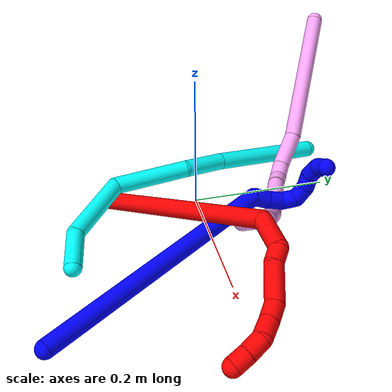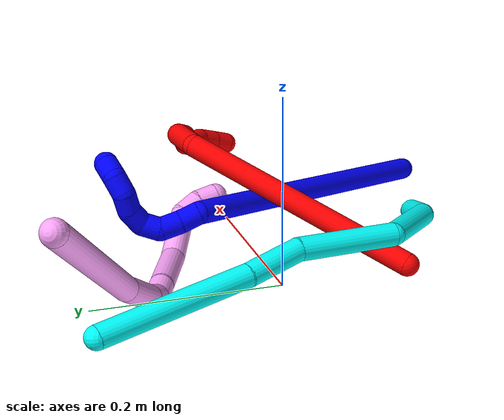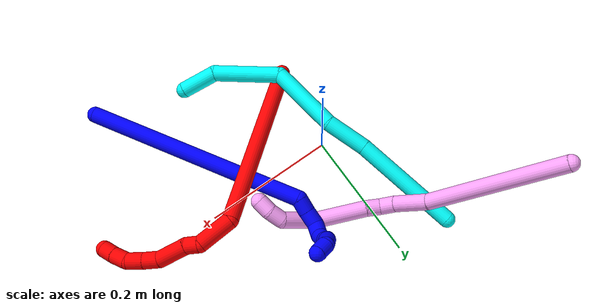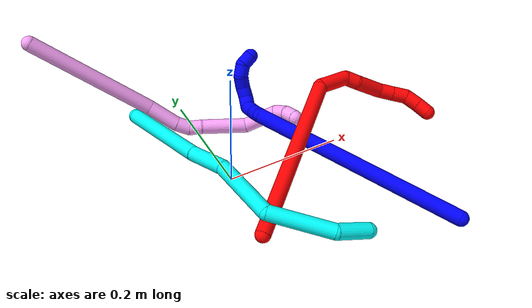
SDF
<sdf version="1.7">
 <world name="default">
  <plugin name="TubeGeneratorPlugin" filename="libtube_generator_plugin.so"/>
  <model name="photoneo_s_sensor">
   <static>1</static>
   <pose>0 0 2 1.57079 1.57079 3.14159</pose>
   <link name="link">
    <inertial><mass>0.1</mass></inertial>
    <sensor name="sensor" type="depth">
     <update_rate>30</update_rate>
     <camera>
      <horizontal_fov>1.22</horizontal_fov>
      <image><width>1920</width><height>1200</height><format>B8G8R8</format></image>
      <clip><near>0.1</near><far>4</far></clip>
      <depth_camera><output>points</output></depth_camera>
     </camera>
     <plugin name="camera_plugin" filename="libgazebo_ros_depth_camera.so">
      <baseline>0.2</baseline>
      <alwaysOn>1</alwaysOn>
      <updateRate>0.0</updateRate>
      <cameraName>camera_ir</cameraName>
      <imageTopicName>/camera/color/image_raw</imageTopicName>
      <cameraInfoTopicName>/camera/color/camera_info</cameraInfoTopicName>
      <depthImageTopicName>/camera/depth/image_raw</depthImageTopicName>
      <depthImageCameraInfoTopicName>/camera/depth/camera_info</depthImageCameraInfoTopicName>
      <pointCloudTopicName>/camera/depth/points</pointCloudTopicName>
      <frameName>fr_optical</frameName>
      <pointCloudCutoff>0.1</pointCloudCutoff>
      <pointCloudCutoffMax>2.0</pointCloudCutoffMax>
      <distortionK1>0</distortionK1>
      <distortionK2>0</distortionK2>
      <distortionK3>0</distortionK3>
      <distortionT1>0</distortionT1>
      <distortionT2>0</distortionT2>
      <CxPrime>0</CxPrime>
      <Cx>0</Cx>
      <Cy>0</Cy>
      <focalLength>0</focalLength>
      <hackBaseline>0</hackBaseline>
     </plugin>
    </sensor>
   </link>
  </model>
  <gravity>0 0 -9.8</gravity>
  <magnetic_field>6e-06 2.3e-05 -4.2e-05</magnetic_field>
  <atmosphere type="adiabatic"/>
  <physics name="default_physics" default="0" type="ode">
   <max_step_size>0.003</max_step_size>
   <real_time_factor>1</real_time_factor>
   <real_time_update_rate>1000</real_time_update_rate>
   <max_contacts>10000</max_contacts>
   <ode>
    <solver>
     <type>quick</type>
     <iters>100</iters>
     <sor>1.3</sor>
     <use_dynamic_moi_rescaling>0</use_dynamic_moi_rescaling>
    </solver>
    <constraints>
     <contact_max_correcting_vel>0</contact_max_correcting_vel>
     <contact_surface_layer>0.001</contact_surface_layer>
     <cfm>0</cfm>
     <erp>0.2</erp>
    </constraints>
   </ode>
  </physics>
  <scene><ambient>0.4 0.4 0.4 1</ambient><background>0.7 0.7 0.7 1</background><shadows>0</shadows></scene>
  <audio><device>default</device></audio>
  <spherical_coordinates>
   <surface_model>EARTH_WGS84</surface_model>
   <latitude_deg>0</latitude_deg>
   <longitude_deg>0</longitude_deg>
   <elevation>0</elevation>
   <heading_deg>0</heading_deg>
  </spherical_coordinates>
  <model name="bin">
   <static>1</static>
   <link name="bottom">
    <collision name="collision-bottom">
     <pose>0 0 -0.01 0 -0 0</pose>
     <geometry><box><size>0.8 0.6 0.02</size></box></geometry>
     <surface>
      <friction><ode><mu>100</mu><mu2>100</mu2></ode></friction>
      <contact><collide_bitmask>65535</collide_bitmask></contact>
     </surface>
    </collision>
   </link>
   <link name="west_wall">
    <collision name="collision-west_wall">
     <pose>-0.41 0 0.1 0 -0 0</pose>
     <geometry><box><size>0.02 0.6 0.2</size></box></geometry>
     <surface>
      <friction><ode><mu>100</mu><mu2>100</mu2></ode></friction>
      <contact><collide_bitmask>65535</collide_bitmask></contact>
     </surface>
    </collision>
   </link>
   <link name="east_wall">
    <collision name="collision-east_wall">
     <pose>0.41 0 0.1 0 -0 0</pose>
     <geometry><box><size>0.02 0.6 0.2</size></box></geometry>
     <surface>
      <friction><ode><mu>100</mu><mu2>100</mu2></ode></friction>
      <contact><collide_bitmask>65535</collide_bitmask></contact>
     </surface>
    </collision>
   </link>
   <link name="south_wall">
    <collision name="collision-south_wall">
     <pose>0 -0.31 0.1 0 -0 0</pose>
     <geometry><box><size>0.8 0.02 0.2</size></box></geometry>
     <surface>
      <friction><ode><mu>100</mu><mu2>100</mu2></ode></friction>
      <contact><collide_bitmask>65535</collide_bitmask></contact>
     </surface>
    </collision>
   </link>
   <link name="north_wall">
    <collision name="collision-north_wall">
     <pose>0 0.31 0.1 0 -0 0</pose>
     <geometry><box><size>0.8 0.02 0.2</size></box></geometry>
     <surface>
      <friction><ode><mu>100</mu><mu2>100</mu2></ode></friction>
      <contact><collide_bitmask>65535</collide_bitmask></contact>
     </surface>
    </collision>
   </link>
  </model>
  <model name="1">
   <static>0</static>
   <link name="1">
    <collision name="collision-cylinder-e_1_1_4">
     <pose>-0.10485 0.124613 -0.070045 -2.08288 -0.63284 1.02044</pose>
     <geometry><cylinder><radius>0.0125</radius><length>0.354561</length></cylinder></geometry>
     <surface>
      <friction><ode><mu>1.16</mu><mu2>1.16</mu2><slip1>0</slip1><slip2>0</slip2></ode></friction>
      <contact><ode><kp>1e+06</kp><kd>1</kd><max_vel>0</max_vel><min_depth>0.001</min_depth></ode></contact>
     </surface>
    </collision>
    <visual name="visual-cylinder-e_1_1_4">
     <pose>-0.10485 0.124613 -0.070045 -2.08288 -0.63284 1.02044</pose>
     <geometry><cylinder><radius>0.0125</radius><length>0.354561</length></cylinder></geometry>
     <material><ambient>0 0 1 1</ambient></material>
    </visual>
    <collision name="collision-cylinder-e_2_4_5">
     <pose>-0.216772 0.249952 -0.148325 -3.05378 -0.707674 2.90482</pose>
     <geometry><cylinder><radius>0.0125</radius><length>0.021756</length></cylinder></geometry>
     <surface>
      <friction><ode><mu>1.16</mu><mu2>1.16</mu2><slip1>0</slip1><slip2>0</slip2></ode></friction>
      <contact><ode><kp>1e+06</kp><kd>1</kd><max_vel>0</max_vel><min_depth>0.001</min_depth></ode></contact>
     </surface>
    </collision>
    <visual name="visual-cylinder-e_2_4_5">
     <pose>-0.216772 0.249952 -0.148325 -3.05378 -0.707674 2.90482</pose>
     <geometry><cylinder><radius>0.0125</radius><length>0.021756</length></cylinder></geometry>
     <material><ambient>0 0 1 1</ambient></material>
    </visual>
    <collision name="collision-cylinder-e_3_5_6">
     <pose>-0.230768 0.253063 -0.165285 -2.87468 -0.653301 2.38699</pose>
     <geometry><cylinder><radius>0.0125</radius><length>0.022785</length></cylinder></geometry>
     <surface>
      <friction><ode><mu>1.16</mu><mu2>1.16</mu2><slip1>0</slip1><slip2>0</slip2></ode></friction>
      <contact><ode><kp>1e+06</kp><kd>1</kd><max_vel>0</max_vel><min_depth>0.001</min_depth></ode></contact>
     </surface>
    </collision>
    <visual name="visual-cylinder-e_3_5_6">
     <pose>-0.230768 0.253063 -0.165285 -2.87468 -0.653301 2.38699</pose>
     <geometry><cylinder><radius>0.0125</radius><length>0.022785</length></cylinder></geometry>
     <material><ambient>0 0 1 1</ambient></material>
    </visual>
    <collision name="collision-cylinder-e_4_6_7">
     <pose>-0.23798 0.259626 -0.183211 -2.7153 -0.028506 0.131526</pose>
     <geometry><cylinder><radius>0.0125</radius><length>0.020216</length></cylinder></geometry>
     <surface>
      <friction><ode><mu>1.16</mu><mu2>1.16</mu2><slip1>0</slip1><slip2>0</slip2></ode></friction>
      <contact><ode><kp>1e+06</kp><kd>1</kd><max_vel>0</max_vel><min_depth>0.001</min_depth></ode></contact>
     </surface>
    </collision>
    <visual name="visual-cylinder-e_4_6_7">
     <pose>-0.23798 0.259626 -0.183211 -2.7153 -0.028506 0.131526</pose>
     <geometry><cylinder><radius>0.0125</radius><length>0.020216</length></cylinder></geometry>
     <material><ambient>0 0 1 1</ambient></material>
    </visual>
    <collision name="collision-cylinder-e_5_7_8">
     <pose>-0.235615 0.272241 -0.197594 -2.12172 0.26179 -0.462361</pose>
     <geometry><cylinder><radius>0.0125</radius><length>0.020502</length></cylinder></geometry>
     <surface>
      <friction><ode><mu>1.16</mu><mu2>1.16</mu2><slip1>0</slip1><slip2>0</slip2></ode></friction>
      <contact><ode><kp>1e+06</kp><kd>1</kd><max_vel>0</max_vel><min_depth>0.001</min_depth></ode></contact>
     </surface>
    </collision>
    <visual name="visual-cylinder-e_5_7_8">
     <pose>-0.235615 0.272241 -0.197594 -2.12172 0.26179 -0.462361</pose>
     <geometry><cylinder><radius>0.0125</radius><length>0.020502</length></cylinder></geometry>
     <material><ambient>0 0 1 1</ambient></material>
    </visual>
    <collision name="collision-cylinder-e_6_8_9">
     <pose>-0.227777 0.289041 -0.204854 -1.81417 0.541736 -0.682378</pose>
     <geometry><cylinder><radius>0.0125</radius><length>0.020114</length></cylinder></geometry>
     <surface>
      <friction><ode><mu>1.16</mu><mu2>1.16</mu2><slip1>0</slip1><slip2>0</slip2></ode></friction>
      <contact><ode><kp>1e+06</kp><kd>1</kd><max_vel>0</max_vel><min_depth>0.001</min_depth></ode></contact>
     </surface>
    </collision>
    <visual name="visual-cylinder-e_6_8_9">
     <pose>-0.227777 0.289041 -0.204854 -1.81417 0.541736 -0.682378</pose>
     <geometry><cylinder><radius>0.0125</radius><length>0.020114</length></cylinder></geometry>
     <material><ambient>0 0 1 1</ambient></material>
    </visual>
    <collision name="collision-cylinder-e_7_9_10">
     <pose>-0.216293 0.302772 -0.212591 -2.38263 0.679171 -1.44984</pose>
     <geometry><cylinder><radius>0.0125</radius><length>0.020053</length></cylinder></geometry>
     <surface>
      <friction><ode><mu>1.16</mu><mu2>1.16</mu2><slip1>0</slip1><slip2>0</slip2></ode></friction>
      <contact><ode><kp>1e+06</kp><kd>1</kd><max_vel>0</max_vel><min_depth>0.001</min_depth></ode></contact>
     </surface>
    </collision>
    <visual name="visual-cylinder-e_7_9_10">
     <pose>-0.216293 0.302772 -0.212591 -2.38263 0.679171 -1.44984</pose>
     <geometry><cylinder><radius>0.0125</radius><length>0.020053</length></cylinder></geometry>
     <material><ambient>0 0 1 1</ambient></material>
    </visual>
    <collision name="collision-cylinder-e_8_10_2">
     <pose>-0.202941 0.307624 -0.22533 3.06861 0.782288 2.965</pose>
     <geometry><cylinder><radius>0.0125</radius><length>0.020013</length></cylinder></geometry>
     <surface>
      <friction><ode><mu>1.16</mu><mu2>1.16</mu2><slip1>0</slip1><slip2>0</slip2></ode></friction>
      <contact><ode><kp>1e+06</kp><kd>1</kd><max_vel>0</max_vel><min_depth>0.001</min_depth></ode></contact>
     </surface>
    </collision>
    <visual name="visual-cylinder-e_8_10_2">
     <pose>-0.202941 0.307624 -0.22533 3.06861 0.782288 2.965</pose>
     <geometry><cylinder><radius>0.0125</radius><length>0.020013</length></cylinder></geometry>
     <material><ambient>0 0 1 1</ambient></material>
    </visual>
    <collision name="collision-sphere-2">
     <pose>-0.195887 0.307106 -0.232409 0 -0 0</pose>
     <geometry><sphere><radius>0.0125</radius></sphere></geometry>
     <surface>
      <friction><ode><mu>1.16</mu><mu2>1.16</mu2><slip1>0</slip1><slip2>0</slip2></ode></friction>
      <contact><ode><kp>1e+06</kp><kd>1</kd><max_vel>0</max_vel><min_depth>0.001</min_depth></ode></contact>
     </surface>
    </collision>
    <visual name="visual-sphere-2">
     <pose>-0.195887 0.307106 -0.232409 0 -0 0</pose>
     <geometry><sphere><radius>0.0125</radius></sphere></geometry>
     <material><ambient>0 0 1 1</ambient></material>
    </visual>
    <collision name="collision-sphere-10">
     <pose>-0.209995 0.308141 -0.218251 0 -0 0</pose>
     <geometry><sphere><radius>0.0125</radius></sphere></geometry>
     <surface>
      <friction><ode><mu>1.16</mu><mu2>1.16</mu2><slip1>0</slip1><slip2>0</slip2></ode></friction>
      <contact><ode><kp>1e+06</kp><kd>1</kd><max_vel>0</max_vel><min_depth>0.001</min_depth></ode></contact>
     </surface>
    </collision>
    <visual name="visual-sphere-10">
     <pose>-0.209995 0.308141 -0.218251 0 -0 0</pose>
     <geometry><sphere><radius>0.0125</radius></sphere></geometry>
     <material><ambient>0 0 1 1</ambient></material>
    </visual>
    <collision name="collision-sphere-9">
     <pose>-0.222591 0.297404 -0.20693 0 -0 0</pose>
     <geometry><sphere><radius>0.0125</radius></sphere></geometry>
     <surface>
      <friction><ode><mu>1.16</mu><mu2>1.16</mu2><slip1>0</slip1><slip2>0</slip2></ode></friction>
      <contact><ode><kp>1e+06</kp><kd>1</kd><max_vel>0</max_vel><min_depth>0.001</min_depth></ode></contact>
     </surface>
    </collision>
    <visual name="visual-sphere-9">
     <pose>-0.222591 0.297404 -0.20693 0 -0 0</pose>
     <geometry><sphere><radius>0.0125</radius></sphere></geometry>
     <material><ambient>0 0 1 1</ambient></material>
    </visual>
    <collision name="collision-sphere-4">
     <pose>-0.2097 0.249227 -0.140091 0 -0 0</pose>
     <geometry><sphere><radius>0.0125</radius></sphere></geometry>
     <surface>
      <friction><ode><mu>1.16</mu><mu2>1.16</mu2><slip1>0</slip1><slip2>0</slip2></ode></friction>
      <contact><ode><kp>1e+06</kp><kd>1</kd><max_vel>0</max_vel><min_depth>0.001</min_depth></ode></contact>
     </surface>
    </collision>
    <visual name="visual-sphere-4">
     <pose>-0.2097 0.249227 -0.140091 0 -0 0</pose>
     <geometry><sphere><radius>0.0125</radius></sphere></geometry>
     <material><ambient>0 0 1 1</ambient></material>
    </visual>
    <collision name="collision-sphere-1">
     <geometry><sphere><radius>0.0125</radius></sphere></geometry>
     <surface>
      <friction><ode><mu>1.16</mu><mu2>1.16</mu2><slip1>0</slip1><slip2>0</slip2></ode></friction>
      <contact><ode><kp>1e+06</kp><kd>1</kd><max_vel>0</max_vel><min_depth>0.001</min_depth></ode></contact>
     </surface>
    </collision>
    <visual name="visual-sphere-1">
     <geometry><sphere><radius>0.0125</radius></sphere></geometry>
     <material><ambient>0 0 1 1</ambient></material>
    </visual>
    <collision name="collision-sphere-8">
     <pose>-0.232962 0.280678 -0.202777 0 -0 0</pose>
     <geometry><sphere><radius>0.0125</radius></sphere></geometry>
     <surface>
      <friction><ode><mu>1.16</mu><mu2>1.16</mu2><slip1>0</slip1><slip2>0</slip2></ode></friction>
      <contact><ode><kp>1e+06</kp><kd>1</kd><max_vel>0</max_vel><min_depth>0.001</min_depth></ode></contact>
     </surface>
    </collision>
    <visual name="visual-sphere-8">
     <pose>-0.232962 0.280678 -0.202777 0 -0 0</pose>
     <geometry><sphere><radius>0.0125</radius></sphere></geometry>
     <material><ambient>0 0 1 1</ambient></material>
    </visual>
    <collision name="collision-sphere-5">
     <pose>-0.223844 0.250676 -0.156559 0 -0 0</pose>
     <geometry><sphere><radius>0.0125</radius></sphere></geometry>
     <surface>
      <friction><ode><mu>1.16</mu><mu2>1.16</mu2><slip1>0</slip1><slip2>0</slip2></ode></friction>
      <contact><ode><kp>1e+06</kp><kd>1</kd><max_vel>0</max_vel><min_depth>0.001</min_depth></ode></contact>
     </surface>
    </collision>
    <visual name="visual-sphere-5">
     <pose>-0.223844 0.250676 -0.156559 0 -0 0</pose>
     <geometry><sphere><radius>0.0125</radius></sphere></geometry>
     <material><ambient>0 0 1 1</ambient></material>
    </visual>
    <collision name="collision-sphere-6">
     <pose>-0.237692 0.255449 -0.174011 0 -0 0</pose>
     <geometry><sphere><radius>0.0125</radius></sphere></geometry>
     <surface>
      <friction><ode><mu>1.16</mu><mu2>1.16</mu2><slip1>0</slip1><slip2>0</slip2></ode></friction>
      <contact><ode><kp>1e+06</kp><kd>1</kd><max_vel>0</max_vel><min_depth>0.001</min_depth></ode></contact>
     </surface>
    </collision>
    <visual name="visual-sphere-6">
     <pose>-0.237692 0.255449 -0.174011 0 -0 0</pose>
     <geometry><sphere><radius>0.0125</radius></sphere></geometry>
     <material><ambient>0 0 1 1</ambient></material>
    </visual>
    <collision name="collision-sphere-7">
     <pose>-0.238268 0.263804 -0.19241 0 -0 0</pose>
     <geometry><sphere><radius>0.0125</radius></sphere></geometry>
     <surface>
      <friction><ode><mu>1.16</mu><mu2>1.16</mu2><slip1>0</slip1><slip2>0</slip2></ode></friction>
      <contact><ode><kp>1e+06</kp><kd>1</kd><max_vel>0</max_vel><min_depth>0.001</min_depth></ode></contact>
     </surface>
    </collision>
    <visual name="visual-sphere-7">
     <pose>-0.238268 0.263804 -0.19241 0 -0 0</pose>
     <geometry><sphere><radius>0.0125</radius></sphere></geometry>
     <material><ambient>0 0 1 1</ambient></material>
    </visual>
    <inertial>
     <pose>-0.139544 0.168518 -0.104952 0 -0 0</pose>
     <mass>0.5</mass>
     <inertia>
      <ixx>0.004119</ixx>
      <ixy>0</ixy>
      <ixz>0</ixz>
      <iyy>0.003272</iyy>
      <iyz>0</iyz>
      <izz>-0.000439</izz>
     </inertia>
    </inertial>
   </link>
   <pose>0.259831 -0.243545 0.012283 1.59942 -0.748202 -0.668276</pose>
  </model>
  <model name="2">
   <static>0</static>
   <link name="2">
    <collision name="collision-cylinder-e_1_1_4">
     <pose>0.086873 0.042875 -0.10121 -2.74089 0.66883 -2.08378</pose>
     <geometry><cylinder><radius>0.0125</radius><length>0.280203</length></cylinder></geometry>
     <surface>
      <friction><ode><mu>1.16</mu><mu2>1.16</mu2><slip1>0</slip1><slip2>0</slip2></ode></friction>
      <contact><ode><kp>1e+06</kp><kd>1</kd><max_vel>0</max_vel><min_depth>0.001</min_depth></ode></contact>
     </surface>
    </collision>
    <visual name="visual-cylinder-e_1_1_4">
     <pose>0.086873 0.042875 -0.10121 -2.74089 0.66883 -2.08378</pose>
     <geometry><cylinder><radius>0.0125</radius><length>0.280203</length></cylinder></geometry>
     <material><ambient>1 0 0 1</ambient></material>
    </visual>
    <collision name="collision-cylinder-e_2_4_5">
     <pose>0.193381 0.075554 -0.217714 2.55363 0.818392 1.92269</pose>
     <geometry><cylinder><radius>0.0125</radius><length>0.053793</length></cylinder></geometry>
     <surface>
      <friction><ode><mu>1.16</mu><mu2>1.16</mu2><slip1>0</slip1><slip2>0</slip2></ode></friction>
      <contact><ode><kp>1e+06</kp><kd>1</kd><max_vel>0</max_vel><min_depth>0.001</min_depth></ode></contact>
     </surface>
    </collision>
    <visual name="visual-cylinder-e_2_4_5">
     <pose>0.193381 0.075554 -0.217714 2.55363 0.818392 1.92269</pose>
     <geometry><cylinder><radius>0.0125</radius><length>0.053793</length></cylinder></geometry>
     <material><ambient>1 0 0 1</ambient></material>
    </visual>
    <collision name="collision-cylinder-e_3_5_6">
     <pose>0.218316 0.056217 -0.234307 1.71194 0.520984 0.595912</pose>
     <geometry><cylinder><radius>0.0125</radius><length>0.021292</length></cylinder></geometry>
     <surface>
      <friction><ode><mu>1.16</mu><mu2>1.16</mu2><slip1>0</slip1><slip2>0</slip2></ode></friction>
      <contact><ode><kp>1e+06</kp><kd>1</kd><max_vel>0</max_vel><min_depth>0.001</min_depth></ode></contact>
     </surface>
    </collision>
    <visual name="visual-cylinder-e_3_5_6">
     <pose>0.218316 0.056217 -0.234307 1.71194 0.520984 0.595912</pose>
     <geometry><cylinder><radius>0.0125</radius><length>0.021292</length></cylinder></geometry>
     <material><ambient>1 0 0 1</ambient></material>
    </visual>
    <collision name="collision-cylinder-e_4_6_7">
     <pose>0.23414 0.027082 -0.246335 2.06334 0.434316 0.706662</pose>
     <geometry><cylinder><radius>0.0125</radius><length>0.050025</length></cylinder></geometry>
     <surface>
      <friction><ode><mu>1.16</mu><mu2>1.16</mu2><slip1>0</slip1><slip2>0</slip2></ode></friction>
      <contact><ode><kp>1e+06</kp><kd>1</kd><max_vel>0</max_vel><min_depth>0.001</min_depth></ode></contact>
     </surface>
    </collision>
    <visual name="visual-cylinder-e_4_6_7">
     <pose>0.23414 0.027082 -0.246335 2.06334 0.434316 0.706662</pose>
     <geometry><cylinder><radius>0.0125</radius><length>0.050025</length></cylinder></geometry>
     <material><ambient>1 0 0 1</ambient></material>
    </visual>
    <collision name="collision-cylinder-e_5_7_8">
     <pose>0.252213 -0.002266 -0.257997 1.67016 0.676512 0.741262</pose>
     <geometry><cylinder><radius>0.0125</radius><length>0.024114</length></cylinder></geometry>
     <surface>
      <friction><ode><mu>1.16</mu><mu2>1.16</mu2><slip1>0</slip1><slip2>0</slip2></ode></friction>
      <contact><ode><kp>1e+06</kp><kd>1</kd><max_vel>0</max_vel><min_depth>0.001</min_depth></ode></contact>
     </surface>
    </collision>
    <visual name="visual-cylinder-e_5_7_8">
     <pose>0.252213 -0.002266 -0.257997 1.67016 0.676512 0.741262</pose>
     <geometry><cylinder><radius>0.0125</radius><length>0.024114</length></cylinder></geometry>
     <material><ambient>1 0 0 1</ambient></material>
    </visual>
    <collision name="collision-cylinder-e_6_8_9">
     <pose>0.267957 -0.021173 -0.259077 1.58621 0.709061 0.719158</pose>
     <geometry><cylinder><radius>0.0125</radius><length>0.025172</length></cylinder></geometry>
     <surface>
      <friction><ode><mu>1.16</mu><mu2>1.16</mu2><slip1>0</slip1><slip2>0</slip2></ode></friction>
      <contact><ode><kp>1e+06</kp><kd>1</kd><max_vel>0</max_vel><min_depth>0.001</min_depth></ode></contact>
     </surface>
    </collision>
    <visual name="visual-cylinder-e_6_8_9">
     <pose>0.267957 -0.021173 -0.259077 1.58621 0.709061 0.719158</pose>
     <geometry><cylinder><radius>0.0125</radius><length>0.025172</length></cylinder></geometry>
     <material><ambient>1 0 0 1</ambient></material>
    </visual>
    <collision name="collision-cylinder-e_7_9_10">
     <pose>0.280136 -0.041548 -0.255752 1.26036 0.337112 0.246979</pose>
     <geometry><cylinder><radius>0.0125</radius><length>0.024088</length></cylinder></geometry>
     <surface>
      <friction><ode><mu>1.16</mu><mu2>1.16</mu2><slip1>0</slip1><slip2>0</slip2></ode></friction>
      <contact><ode><kp>1e+06</kp><kd>1</kd><max_vel>0</max_vel><min_depth>0.001</min_depth></ode></contact>
     </surface>
    </collision>
    <visual name="visual-cylinder-e_7_9_10">
     <pose>0.280136 -0.041548 -0.255752 1.26036 0.337112 0.246979</pose>
     <geometry><cylinder><radius>0.0125</radius><length>0.024088</length></cylinder></geometry>
     <material><ambient>1 0 0 1</ambient></material>
    </visual>
    <collision name="collision-cylinder-e_8_10_2">
     <pose>0.286975 -0.06187 -0.248387 1.18185 0.271293 0.182625</pose>
     <geometry><cylinder><radius>0.0125</radius><length>0.021312</length></cylinder></geometry>
     <surface>
      <friction><ode><mu>1.16</mu><mu2>1.16</mu2><slip1>0</slip1><slip2>0</slip2></ode></friction>
      <contact><ode><kp>1e+06</kp><kd>1</kd><max_vel>0</max_vel><min_depth>0.001</min_depth></ode></contact>
     </surface>
    </collision>
    <visual name="visual-cylinder-e_8_10_2">
     <pose>0.286975 -0.06187 -0.248387 1.18185 0.271293 0.182625</pose>
     <geometry><cylinder><radius>0.0125</radius><length>0.021312</length></cylinder></geometry>
     <material><ambient>1 0 0 1</ambient></material>
    </visual>
    <collision name="collision-sphere-2">
     <pose>0.289831 -0.071369 -0.244494 0 -0 0</pose>
     <geometry><sphere><radius>0.0125</radius></sphere></geometry>
     <surface>
      <friction><ode><mu>1.16</mu><mu2>1.16</mu2><slip1>0</slip1><slip2>0</slip2></ode></friction>
      <contact><ode><kp>1e+06</kp><kd>1</kd><max_vel>0</max_vel><min_depth>0.001</min_depth></ode></contact>
     </surface>
    </collision>
    <visual name="visual-sphere-2">
     <pose>0.289831 -0.071369 -0.244494 0 -0 0</pose>
     <geometry><sphere><radius>0.0125</radius></sphere></geometry>
     <material><ambient>1 0 0 1</ambient></material>
    </visual>
    <collision name="collision-sphere-10">
     <pose>0.28412 -0.052371 -0.25228 0 -0 0</pose>
     <geometry><sphere><radius>0.0125</radius></sphere></geometry>
     <surface>
      <friction><ode><mu>1.16</mu><mu2>1.16</mu2><slip1>0</slip1><slip2>0</slip2></ode></friction>
      <contact><ode><kp>1e+06</kp><kd>1</kd><max_vel>0</max_vel><min_depth>0.001</min_depth></ode></contact>
     </surface>
    </collision>
    <visual name="visual-sphere-10">
     <pose>0.28412 -0.052371 -0.25228 0 -0 0</pose>
     <geometry><sphere><radius>0.0125</radius></sphere></geometry>
     <material><ambient>1 0 0 1</ambient></material>
    </visual>
    <collision name="collision-sphere-9">
     <pose>0.276152 -0.030725 -0.259224 0 -0 0</pose>
     <geometry><sphere><radius>0.0125</radius></sphere></geometry>
     <surface>
      <friction><ode><mu>1.16</mu><mu2>1.16</mu2><slip1>0</slip1><slip2>0</slip2></ode></friction>
      <contact><ode><kp>1e+06</kp><kd>1</kd><max_vel>0</max_vel><min_depth>0.001</min_depth></ode></contact>
     </surface>
    </collision>
    <visual name="visual-sphere-9">
     <pose>0.276152 -0.030725 -0.259224 0 -0 0</pose>
     <geometry><sphere><radius>0.0125</radius></sphere></geometry>
     <material><ambient>1 0 0 1</ambient></material>
    </visual>
    <collision name="collision-sphere-4">
     <pose>0.173745 0.085749 -0.202419 0 -0 0</pose>
     <geometry><sphere><radius>0.0125</radius></sphere></geometry>
     <surface>
      <friction><ode><mu>1.16</mu><mu2>1.16</mu2><slip1>0</slip1><slip2>0</slip2></ode></friction>
      <contact><ode><kp>1e+06</kp><kd>1</kd><max_vel>0</max_vel><min_depth>0.001</min_depth></ode></contact>
     </surface>
    </collision>
    <visual name="visual-sphere-4">
     <pose>0.173745 0.085749 -0.202419 0 -0 0</pose>
     <geometry><sphere><radius>0.0125</radius></sphere></geometry>
     <material><ambient>1 0 0 1</ambient></material>
    </visual>
    <collision name="collision-sphere-1">
     <geometry><sphere><radius>0.0125</radius></sphere></geometry>
     <surface>
      <friction><ode><mu>1.16</mu><mu2>1.16</mu2><slip1>0</slip1><slip2>0</slip2></ode></friction>
      <contact><ode><kp>1e+06</kp><kd>1</kd><max_vel>0</max_vel><min_depth>0.001</min_depth></ode></contact>
     </surface>
    </collision>
    <visual name="visual-sphere-1">
     <geometry><sphere><radius>0.0125</radius></sphere></geometry>
     <material><ambient>1 0 0 1</ambient></material>
    </visual>
    <collision name="collision-sphere-8">
     <pose>0.259762 -0.011622 -0.25893 0 -0 0</pose>
     <geometry><sphere><radius>0.0125</radius></sphere></geometry>
     <surface>
      <friction><ode><mu>1.16</mu><mu2>1.16</mu2><slip1>0</slip1><slip2>0</slip2></ode></friction>
      <contact><ode><kp>1e+06</kp><kd>1</kd><max_vel>0</max_vel><min_depth>0.001</min_depth></ode></contact>
     </surface>
    </collision>
    <visual name="visual-sphere-8">
     <pose>0.259762 -0.011622 -0.25893 0 -0 0</pose>
     <geometry><sphere><radius>0.0125</radius></sphere></geometry>
     <material><ambient>1 0 0 1</ambient></material>
    </visual>
    <collision name="collision-sphere-5">
     <pose>0.213017 0.065359 -0.233008 0 -0 0</pose>
     <geometry><sphere><radius>0.0125</radius></sphere></geometry>
     <surface>
      <friction><ode><mu>1.16</mu><mu2>1.16</mu2><slip1>0</slip1><slip2>0</slip2></ode></friction>
      <contact><ode><kp>1e+06</kp><kd>1</kd><max_vel>0</max_vel><min_depth>0.001</min_depth></ode></contact>
     </surface>
    </collision>
    <visual name="visual-sphere-5">
     <pose>0.213017 0.065359 -0.233008 0 -0 0</pose>
     <geometry><sphere><radius>0.0125</radius></sphere></geometry>
     <material><ambient>1 0 0 1</ambient></material>
    </visual>
    <collision name="collision-sphere-6">
     <pose>0.223615 0.047075 -0.235606 0 -0 0</pose>
     <geometry><sphere><radius>0.0125</radius></sphere></geometry>
     <surface>
      <friction><ode><mu>1.16</mu><mu2>1.16</mu2><slip1>0</slip1><slip2>0</slip2></ode></friction>
      <contact><ode><kp>1e+06</kp><kd>1</kd><max_vel>0</max_vel><min_depth>0.001</min_depth></ode></contact>
     </surface>
    </collision>
    <visual name="visual-sphere-6">
     <pose>0.223615 0.047075 -0.235606 0 -0 0</pose>
     <geometry><sphere><radius>0.0125</radius></sphere></geometry>
     <material><ambient>1 0 0 1</ambient></material>
    </visual>
    <collision name="collision-sphere-7">
     <pose>0.244664 0.007089 -0.257065 0 -0 0</pose>
     <geometry><sphere><radius>0.0125</radius></sphere></geometry>
     <surface>
      <friction><ode><mu>1.16</mu><mu2>1.16</mu2><slip1>0</slip1><slip2>0</slip2></ode></friction>
      <contact><ode><kp>1e+06</kp><kd>1</kd><max_vel>0</max_vel><min_depth>0.001</min_depth></ode></contact>
     </surface>
    </collision>
    <visual name="visual-sphere-7">
     <pose>0.244664 0.007089 -0.257065 0 -0 0</pose>
     <geometry><sphere><radius>0.0125</radius></sphere></geometry>
     <material><ambient>1 0 0 1</ambient></material>
    </visual>
    <inertial>
     <pose>0.153593 0.031445 -0.163159 0 -0 0</pose>
     <mass>0.5</mass>
     <inertia>
      <ixx>-0.001915</ixx>
      <ixy>0</ixy>
      <ixz>0</ixz>
      <iyy>-1.1e-05</iyy>
      <iyz>0</iyz>
      <izz>-0.001724</izz>
     </inertia>
    </inertial>
   </link>
   <pose>-0.016859 -0.131092 0.012489 1.05921 -0.624414 -0.259759</pose>
  </model>
  <model name="3">
   <static>0</static>
   <link name="3">
    <collision name="collision-cylinder-e_1_1_4">
     <pose>0.020294 -0.063204 0.049525 0.906145 0.247559 0.120996</pose>
     <geometry><cylinder><radius>0.0125</radius><length>0.165642</length></cylinder></geometry>
     <surface>
      <friction><ode><mu>1.16</mu><mu2>1.16</mu2><slip1>0</slip1><slip2>0</slip2></ode></friction>
      <contact><ode><kp>1e+06</kp><kd>1</kd><max_vel>0</max_vel><min_depth>0.001</min_depth></ode></contact>
     </surface>
    </collision>
    <visual name="visual-cylinder-e_1_1_4">
     <pose>0.020294 -0.063204 0.049525 0.906145 0.247559 0.120996</pose>
     <geometry><cylinder><radius>0.0125</radius><length>0.165642</length></cylinder></geometry>
     <material><ambient>0.003922 1 0.996078 1</ambient></material>
    </visual>
    <collision name="collision-cylinder-e_2_4_5">
     <pose>0.050076 -0.152931 0.115031 1.02855 0.297286 0.168808</pose>
     <geometry><cylinder><radius>0.0125</radius><length>0.064773</length></cylinder></geometry>
     <surface>
      <friction><ode><mu>1.16</mu><mu2>1.16</mu2><slip1>0</slip1><slip2>0</slip2></ode></friction>
      <contact><ode><kp>1e+06</kp><kd>1</kd><max_vel>0</max_vel><min_depth>0.001</min_depth></ode></contact>
     </surface>
    </collision>
    <visual name="visual-cylinder-e_2_4_5">
     <pose>0.050076 -0.152931 0.115031 1.02855 0.297286 0.168808</pose>
     <geometry><cylinder><radius>0.0125</radius><length>0.064773</length></cylinder></geometry>
     <material><ambient>0.003922 1 0.996078 1</ambient></material>
    </visual>
    <collision name="collision-cylinder-e_3_5_6">
     <pose>0.062078 -0.220752 0.167008 0.853864 0.045888 0.020878</pose>
     <geometry><cylinder><radius>0.0125</radius><length>0.109684</length></cylinder></geometry>
     <surface>
      <friction><ode><mu>1.16</mu><mu2>1.16</mu2><slip1>0</slip1><slip2>0</slip2></ode></friction>
      <contact><ode><kp>1e+06</kp><kd>1</kd><max_vel>0</max_vel><min_depth>0.001</min_depth></ode></contact>
     </surface>
    </collision>
    <visual name="visual-cylinder-e_3_5_6">
     <pose>0.062078 -0.220752 0.167008 0.853864 0.045888 0.020878</pose>
     <geometry><cylinder><radius>0.0125</radius><length>0.109684</length></cylinder></geometry>
     <material><ambient>0.003922 1 0.996078 1</ambient></material>
    </visual>
    <collision name="collision-cylinder-e_4_6_7">
     <pose>0.070369 -0.313915 0.202251 1.58534 0.110882 0.112503</pose>
     <geometry><cylinder><radius>0.0125</radius><length>0.104382</length></cylinder></geometry>
     <surface>
      <friction><ode><mu>1.16</mu><mu2>1.16</mu2><slip1>0</slip1><slip2>0</slip2></ode></friction>
      <contact><ode><kp>1e+06</kp><kd>1</kd><max_vel>0</max_vel><min_depth>0.001</min_depth></ode></contact>
     </surface>
    </collision>
    <visual name="visual-cylinder-e_4_6_7">
     <pose>0.070369 -0.313915 0.202251 1.58534 0.110882 0.112503</pose>
     <geometry><cylinder><radius>0.0125</radius><length>0.104382</length></cylinder></geometry>
     <material><ambient>0.003922 1 0.996078 1</ambient></material>
    </visual>
    <collision name="collision-cylinder-e_5_7_2">
     <pose>0.076918 -0.389724 0.187472 2.10065 0.02788 0.048633</pose>
     <geometry><cylinder><radius>0.0125</radius><length>0.05552</length></cylinder></geometry>
     <surface>
      <friction><ode><mu>1.16</mu><mu2>1.16</mu2><slip1>0</slip1><slip2>0</slip2></ode></friction>
      <contact><ode><kp>1e+06</kp><kd>1</kd><max_vel>0</max_vel><min_depth>0.001</min_depth></ode></contact>
     </surface>
    </collision>
    <visual name="visual-cylinder-e_5_7_2">
     <pose>0.076918 -0.389724 0.187472 2.10065 0.02788 0.048633</pose>
     <geometry><cylinder><radius>0.0125</radius><length>0.05552</length></cylinder></geometry>
     <material><ambient>0.003922 1 0.996078 1</ambient></material>
    </visual>
    <collision name="collision-sphere-2">
     <pose>0.077692 -0.413668 0.173447 0 -0 0</pose>
     <geometry><sphere><radius>0.0125</radius></sphere></geometry>
     <surface>
      <friction><ode><mu>1.16</mu><mu2>1.16</mu2><slip1>0</slip1><slip2>0</slip2></ode></friction>
      <contact><ode><kp>1e+06</kp><kd>1</kd><max_vel>0</max_vel><min_depth>0.001</min_depth></ode></contact>
     </surface>
    </collision>
    <visual name="visual-sphere-2">
     <pose>0.077692 -0.413668 0.173447 0 -0 0</pose>
     <geometry><sphere><radius>0.0125</radius></sphere></geometry>
     <material><ambient>0.003922 1 0.996078 1</ambient></material>
    </visual>
    <collision name="collision-sphere-7">
     <pose>0.076144 -0.36578 0.201497 0 -0 0</pose>
     <geometry><sphere><radius>0.0125</radius></sphere></geometry>
     <surface>
      <friction><ode><mu>1.16</mu><mu2>1.16</mu2><slip1>0</slip1><slip2>0</slip2></ode></friction>
      <contact><ode><kp>1e+06</kp><kd>1</kd><max_vel>0</max_vel><min_depth>0.001</min_depth></ode></contact>
     </surface>
    </collision>
    <visual name="visual-sphere-7">
     <pose>0.076144 -0.36578 0.201497 0 -0 0</pose>
     <geometry><sphere><radius>0.0125</radius></sphere></geometry>
     <material><ambient>0.003922 1 0.996078 1</ambient></material>
    </visual>
    <collision name="collision-sphere-6">
     <pose>0.064594 -0.26205 0.203006 0 -0 0</pose>
     <geometry><sphere><radius>0.0125</radius></sphere></geometry>
     <surface>
      <friction><ode><mu>1.16</mu><mu2>1.16</mu2><slip1>0</slip1><slip2>0</slip2></ode></friction>
      <contact><ode><kp>1e+06</kp><kd>1</kd><max_vel>0</max_vel><min_depth>0.001</min_depth></ode></contact>
     </surface>
    </collision>
    <visual name="visual-sphere-6">
     <pose>0.064594 -0.26205 0.203006 0 -0 0</pose>
     <geometry><sphere><radius>0.0125</radius></sphere></geometry>
     <material><ambient>0.003922 1 0.996078 1</ambient></material>
    </visual>
    <collision name="collision-sphere-5">
     <pose>0.059562 -0.179455 0.131011 0 -0 0</pose>
     <geometry><sphere><radius>0.0125</radius></sphere></geometry>
     <surface>
      <friction><ode><mu>1.16</mu><mu2>1.16</mu2><slip1>0</slip1><slip2>0</slip2></ode></friction>
      <contact><ode><kp>1e+06</kp><kd>1</kd><max_vel>0</max_vel><min_depth>0.001</min_depth></ode></contact>
     </surface>
    </collision>
    <visual name="visual-sphere-5">
     <pose>0.059562 -0.179455 0.131011 0 -0 0</pose>
     <geometry><sphere><radius>0.0125</radius></sphere></geometry>
     <material><ambient>0.003922 1 0.996078 1</ambient></material>
    </visual>
    <collision name="collision-sphere-1">
     <geometry><sphere><radius>0.0125</radius></sphere></geometry>
     <surface>
      <friction><ode><mu>1.16</mu><mu2>1.16</mu2><slip1>0</slip1><slip2>0</slip2></ode></friction>
      <contact><ode><kp>1e+06</kp><kd>1</kd><max_vel>0</max_vel><min_depth>0.001</min_depth></ode></contact>
     </surface>
    </collision>
    <visual name="visual-sphere-1">
     <geometry><sphere><radius>0.0125</radius></sphere></geometry>
     <material><ambient>0.003922 1 0.996078 1</ambient></material>
    </visual>
    <collision name="collision-sphere-4">
     <pose>0.040589 -0.126407 0.099051 0 -0 0</pose>
     <geometry><sphere><radius>0.0125</radius></sphere></geometry>
     <surface>
      <friction><ode><mu>1.16</mu><mu2>1.16</mu2><slip1>0</slip1><slip2>0</slip2></ode></friction>
      <contact><ode><kp>1e+06</kp><kd>1</kd><max_vel>0</max_vel><min_depth>0.001</min_depth></ode></contact>
     </surface>
    </collision>
    <visual name="visual-sphere-4">
     <pose>0.040589 -0.126407 0.099051 0 -0 0</pose>
     <geometry><sphere><radius>0.0125</radius></sphere></geometry>
     <material><ambient>0.003922 1 0.996078 1</ambient></material>
    </visual>
    <inertial>
     <pose>0.05006 -0.197984 0.130984 0 -0 0</pose>
     <mass>0.5</mass>
     <inertia>
      <ixx>0.000692</ixx>
      <ixy>0</ixy>
      <ixz>0</ixz>
      <iyy>0.000356</iyy>
      <iyz>0</iyz>
      <izz>0.000408</izz>
     </inertia>
    </inertial>
   </link>
   <pose>-0.082016 0.208562 0.0115 0.949756 -1.25584 -0.105999</pose>
  </model>
  <model name="4">
   <static>0</static>
   <link name="4">
    <collision name="collision-cylinder-e_1_1_4">
     <pose>-0.024132 0.008968 -0.106957 -3.05794 -0.221159 2.42066</pose>
     <geometry><cylinder><radius>0.0125</radius><length>0.220024</length></cylinder></geometry>
     <surface>
      <friction><ode><mu>1.16</mu><mu2>1.16</mu2><slip1>0</slip1><slip2>0</slip2></ode></friction>
      <contact><ode><kp>1e+06</kp><kd>1</kd><max_vel>0</max_vel><min_depth>0.001</min_depth></ode></contact>
     </surface>
    </collision>
    <visual name="visual-cylinder-e_1_1_4">
     <pose>-0.024132 0.008968 -0.106957 -3.05794 -0.221159 2.42066</pose>
     <geometry><cylinder><radius>0.0125</radius><length>0.220024</length></cylinder></geometry>
     <material><ambient>1 0.65098 0.996078 1</ambient></material>
    </visual>
    <collision name="collision-cylinder-e_2_4_5">
     <pose>-0.051836 0.01584 -0.240717 3.06351 -0.132078 -2.07459</pose>
     <geometry><cylinder><radius>0.0125</radius><length>0.05424</length></cylinder></geometry>
     <surface>
      <friction><ode><mu>1.16</mu><mu2>1.16</mu2><slip1>0</slip1><slip2>0</slip2></ode></friction>
      <contact><ode><kp>1e+06</kp><kd>1</kd><max_vel>0</max_vel><min_depth>0.001</min_depth></ode></contact>
     </surface>
    </collision>
    <visual name="visual-cylinder-e_2_4_5">
     <pose>-0.051836 0.01584 -0.240717 3.06351 -0.132078 -2.07459</pose>
     <geometry><cylinder><radius>0.0125</radius><length>0.05424</length></cylinder></geometry>
     <material><ambient>1 0.65098 0.996078 1</ambient></material>
    </visual>
    <collision name="collision-cylinder-e_3_5_6">
     <pose>-0.055177 0.015148 -0.279538 -3.02522 0.019058 -0.324314</pose>
     <geometry><cylinder><radius>0.0125</radius><length>0.024207</length></cylinder></geometry>
     <surface>
      <friction><ode><mu>1.16</mu><mu2>1.16</mu2><slip1>0</slip1><slip2>0</slip2></ode></friction>
      <contact><ode><kp>1e+06</kp><kd>1</kd><max_vel>0</max_vel><min_depth>0.001</min_depth></ode></contact>
     </surface>
    </collision>
    <visual name="visual-cylinder-e_3_5_6">
     <pose>-0.055177 0.015148 -0.279538 -3.02522 0.019058 -0.324314</pose>
     <geometry><cylinder><radius>0.0125</radius><length>0.024207</length></cylinder></geometry>
     <material><ambient>1 0.65098 0.996078 1</ambient></material>
    </visual>
    <collision name="collision-cylinder-e_4_6_7">
     <pose>-0.049787 0.019354 -0.30095 -2.85179 0.484536 -2.07478</pose>
     <geometry><cylinder><radius>0.0125</radius><length>0.022152</length></cylinder></geometry>
     <surface>
      <friction><ode><mu>1.16</mu><mu2>1.16</mu2><slip1>0</slip1><slip2>0</slip2></ode></friction>
      <contact><ode><kp>1e+06</kp><kd>1</kd><max_vel>0</max_vel><min_depth>0.001</min_depth></ode></contact>
     </surface>
    </collision>
    <visual name="visual-cylinder-e_4_6_7">
     <pose>-0.049787 0.019354 -0.30095 -2.85179 0.484536 -2.07478</pose>
     <geometry><cylinder><radius>0.0125</radius><length>0.022152</length></cylinder></geometry>
     <material><ambient>1 0.65098 0.996078 1</ambient></material>
    </visual>
    <collision name="collision-cylinder-e_5_7_8">
     <pose>-0.032658 0.033497 -0.344693 -2.82267 0.31955 -1.57281</pose>
     <geometry><cylinder><radius>0.0125</radius><length>0.076207</length></cylinder></geometry>
     <surface>
      <friction><ode><mu>1.16</mu><mu2>1.16</mu2><slip1>0</slip1><slip2>0</slip2></ode></friction>
      <contact><ode><kp>1e+06</kp><kd>1</kd><max_vel>0</max_vel><min_depth>0.001</min_depth></ode></contact>
     </surface>
    </collision>
    <visual name="visual-cylinder-e_5_7_8">
     <pose>-0.032658 0.033497 -0.344693 -2.82267 0.31955 -1.57281</pose>
     <geometry><cylinder><radius>0.0125</radius><length>0.076207</length></cylinder></geometry>
     <material><ambient>1 0.65098 0.996078 1</ambient></material>
    </visual>
    <collision name="collision-cylinder-e_6_8_9">
     <pose>0.002072 0.052493 -0.396347 -2.7251 0.877256 -2.29513</pose>
     <geometry><cylinder><radius>0.0125</radius><length>0.059195</length></cylinder></geometry>
     <surface>
      <friction><ode><mu>1.16</mu><mu2>1.16</mu2><slip1>0</slip1><slip2>0</slip2></ode></friction>
      <contact><ode><kp>1e+06</kp><kd>1</kd><max_vel>0</max_vel><min_depth>0.001</min_depth></ode></contact>
     </surface>
    </collision>
    <visual name="visual-cylinder-e_6_8_9">
     <pose>0.002072 0.052493 -0.396347 -2.7251 0.877256 -2.29513</pose>
     <geometry><cylinder><radius>0.0125</radius><length>0.059195</length></cylinder></geometry>
     <material><ambient>1 0.65098 0.996078 1</ambient></material>
    </visual>
    <collision name="collision-cylinder-e_7_9_10">
     <pose>0.033259 0.05623 -0.42028 2.60783 0.830402 2.03131</pose>
     <geometry><cylinder><radius>0.0125</radius><length>0.022833</length></cylinder></geometry>
     <surface>
      <friction><ode><mu>1.16</mu><mu2>1.16</mu2><slip1>0</slip1><slip2>0</slip2></ode></friction>
      <contact><ode><kp>1e+06</kp><kd>1</kd><max_vel>0</max_vel><min_depth>0.001</min_depth></ode></contact>
     </surface>
    </collision>
    <visual name="visual-cylinder-e_7_9_10">
     <pose>0.033259 0.05623 -0.42028 2.60783 0.830402 2.03131</pose>
     <geometry><cylinder><radius>0.0125</radius><length>0.022833</length></cylinder></geometry>
     <material><ambient>1 0.65098 0.996078 1</ambient></material>
    </visual>
    <collision name="collision-cylinder-e_8_10_2">
     <pose>0.047507 0.046096 -0.433174 2.36002 0.583044 1.25903</pose>
     <geometry><cylinder><radius>0.0125</radius><length>0.021141</length></cylinder></geometry>
     <surface>
      <friction><ode><mu>1.16</mu><mu2>1.16</mu2><slip1>0</slip1><slip2>0</slip2></ode></friction>
      <contact><ode><kp>1e+06</kp><kd>1</kd><max_vel>0</max_vel><min_depth>0.001</min_depth></ode></contact>
     </surface>
    </collision>
    <visual name="visual-cylinder-e_8_10_2">
     <pose>0.047507 0.046096 -0.433174 2.36002 0.583044 1.25903</pose>
     <geometry><cylinder><radius>0.0125</radius><length>0.021141</length></cylinder></geometry>
     <material><ambient>1 0.65098 0.996078 1</ambient></material>
    </visual>
    <collision name="collision-sphere-2">
     <pose>0.053327 0.03988 -0.439437 0 -0 0</pose>
     <geometry><sphere><radius>0.0125</radius></sphere></geometry>
     <surface>
      <friction><ode><mu>1.16</mu><mu2>1.16</mu2><slip1>0</slip1><slip2>0</slip2></ode></friction>
      <contact><ode><kp>1e+06</kp><kd>1</kd><max_vel>0</max_vel><min_depth>0.001</min_depth></ode></contact>
     </surface>
    </collision>
    <visual name="visual-sphere-2">
     <pose>0.053327 0.03988 -0.439437 0 -0 0</pose>
     <geometry><sphere><radius>0.0125</radius></sphere></geometry>
     <material><ambient>1 0.65098 0.996078 1</ambient></material>
    </visual>
    <collision name="collision-sphere-10">
     <pose>0.041687 0.052311 -0.42691 0 -0 0</pose>
     <geometry><sphere><radius>0.0125</radius></sphere></geometry>
     <surface>
      <friction><ode><mu>1.16</mu><mu2>1.16</mu2><slip1>0</slip1><slip2>0</slip2></ode></friction>
      <contact><ode><kp>1e+06</kp><kd>1</kd><max_vel>0</max_vel><min_depth>0.001</min_depth></ode></contact>
     </surface>
    </collision>
    <visual name="visual-sphere-10">
     <pose>0.041687 0.052311 -0.42691 0 -0 0</pose>
     <geometry><sphere><radius>0.0125</radius></sphere></geometry>
     <material><ambient>1 0.65098 0.996078 1</ambient></material>
    </visual>
    <collision name="collision-sphere-9">
     <pose>0.024832 0.060148 -0.41365 0 -0 0</pose>
     <geometry><sphere><radius>0.0125</radius></sphere></geometry>
     <surface>
      <friction><ode><mu>1.16</mu><mu2>1.16</mu2><slip1>0</slip1><slip2>0</slip2></ode></friction>
      <contact><ode><kp>1e+06</kp><kd>1</kd><max_vel>0</max_vel><min_depth>0.001</min_depth></ode></contact>
     </surface>
    </collision>
    <visual name="visual-sphere-9">
     <pose>0.024832 0.060148 -0.41365 0 -0 0</pose>
     <geometry><sphere><radius>0.0125</radius></sphere></geometry>
     <material><ambient>1 0.65098 0.996078 1</ambient></material>
    </visual>
    <collision name="collision-sphere-4">
     <pose>-0.048265 0.017937 -0.213915 0 -0 0</pose>
     <geometry><sphere><radius>0.0125</radius></sphere></geometry>
     <surface>
      <friction><ode><mu>1.16</mu><mu2>1.16</mu2><slip1>0</slip1><slip2>0</slip2></ode></friction>
      <contact><ode><kp>1e+06</kp><kd>1</kd><max_vel>0</max_vel><min_depth>0.001</min_depth></ode></contact>
     </surface>
    </collision>
    <visual name="visual-sphere-4">
     <pose>-0.048265 0.017937 -0.213915 0 -0 0</pose>
     <geometry><sphere><radius>0.0125</radius></sphere></geometry>
     <material><ambient>1 0.65098 0.996078 1</ambient></material>
    </visual>
    <collision name="collision-sphere-1">
     <geometry><sphere><radius>0.0125</radius></sphere></geometry>
     <surface>
      <friction><ode><mu>1.16</mu><mu2>1.16</mu2><slip1>0</slip1><slip2>0</slip2></ode></friction>
      <contact><ode><kp>1e+06</kp><kd>1</kd><max_vel>0</max_vel><min_depth>0.001</min_depth></ode></contact>
     </surface>
    </collision>
    <visual name="visual-sphere-1">
     <geometry><sphere><radius>0.0125</radius></sphere></geometry>
     <material><ambient>1 0.65098 0.996078 1</ambient></material>
    </visual>
    <collision name="collision-sphere-8">
     <pose>-0.020688 0.044839 -0.379044 0 -0 0</pose>
     <geometry><sphere><radius>0.0125</radius></sphere></geometry>
     <surface>
      <friction><ode><mu>1.16</mu><mu2>1.16</mu2><slip1>0</slip1><slip2>0</slip2></ode></friction>
      <contact><ode><kp>1e+06</kp><kd>1</kd><max_vel>0</max_vel><min_depth>0.001</min_depth></ode></contact>
     </surface>
    </collision>
    <visual name="visual-sphere-8">
     <pose>-0.020688 0.044839 -0.379044 0 -0 0</pose>
     <geometry><sphere><radius>0.0125</radius></sphere></geometry>
     <material><ambient>1 0.65098 0.996078 1</ambient></material>
    </visual>
    <collision name="collision-sphere-5">
     <pose>-0.055408 0.013743 -0.267519 0 -0 0</pose>
     <geometry><sphere><radius>0.0125</radius></sphere></geometry>
     <surface>
      <friction><ode><mu>1.16</mu><mu2>1.16</mu2><slip1>0</slip1><slip2>0</slip2></ode></friction>
      <contact><ode><kp>1e+06</kp><kd>1</kd><max_vel>0</max_vel><min_depth>0.001</min_depth></ode></contact>
     </surface>
    </collision>
    <visual name="visual-sphere-5">
     <pose>-0.055408 0.013743 -0.267519 0 -0 0</pose>
     <geometry><sphere><radius>0.0125</radius></sphere></geometry>
     <material><ambient>1 0.65098 0.996078 1</ambient></material>
    </visual>
    <collision name="collision-sphere-6">
     <pose>-0.054946 0.016553 -0.291558 0 -0 0</pose>
     <geometry><sphere><radius>0.0125</radius></sphere></geometry>
     <surface>
      <friction><ode><mu>1.16</mu><mu2>1.16</mu2><slip1>0</slip1><slip2>0</slip2></ode></friction>
      <contact><ode><kp>1e+06</kp><kd>1</kd><max_vel>0</max_vel><min_depth>0.001</min_depth></ode></contact>
     </surface>
    </collision>
    <visual name="visual-sphere-6">
     <pose>-0.054946 0.016553 -0.291558 0 -0 0</pose>
     <geometry><sphere><radius>0.0125</radius></sphere></geometry>
     <material><ambient>1 0.65098 0.996078 1</ambient></material>
    </visual>
    <collision name="collision-sphere-7">
     <pose>-0.044628 0.022155 -0.310343 0 -0 0</pose>
     <geometry><sphere><radius>0.0125</radius></sphere></geometry>
     <surface>
      <friction><ode><mu>1.16</mu><mu2>1.16</mu2><slip1>0</slip1><slip2>0</slip2></ode></friction>
      <contact><ode><kp>1e+06</kp><kd>1</kd><max_vel>0</max_vel><min_depth>0.001</min_depth></ode></contact>
     </surface>
    </collision>
    <visual name="visual-sphere-7">
     <pose>-0.044628 0.022155 -0.310343 0 -0 0</pose>
     <geometry><sphere><radius>0.0125</radius></sphere></geometry>
     <material><ambient>1 0.65098 0.996078 1</ambient></material>
    </visual>
    <inertial>
     <pose>-0.022325 0.023093 -0.237014 0 -0 0</pose>
     <mass>0.5</mass>
     <inertia><ixx>-0.00015</ixx><ixy>0</ixy><ixz>0</ixz><iyy>0.00123</iyy><iyz>0</iyz><izz>4.6e-05</izz></inertia>
    </inertial>
   </link>
   <pose>-0.222209 0.263874 0.176862 0.313986 -1.13435 -0.994786</pose>
  </model>
 </world>
</sdf>
